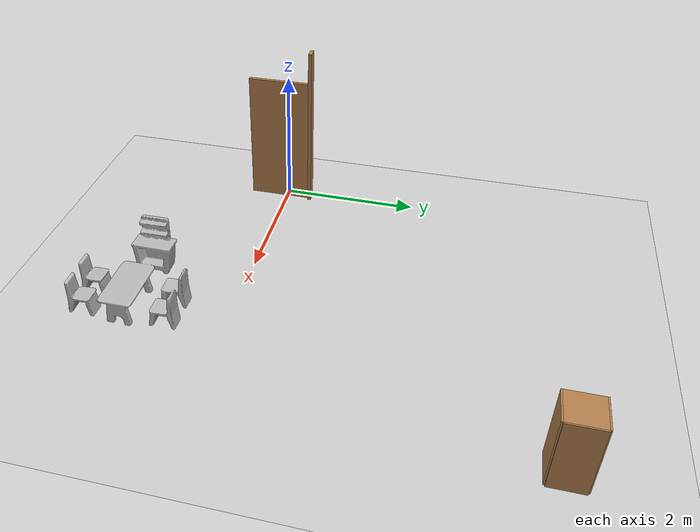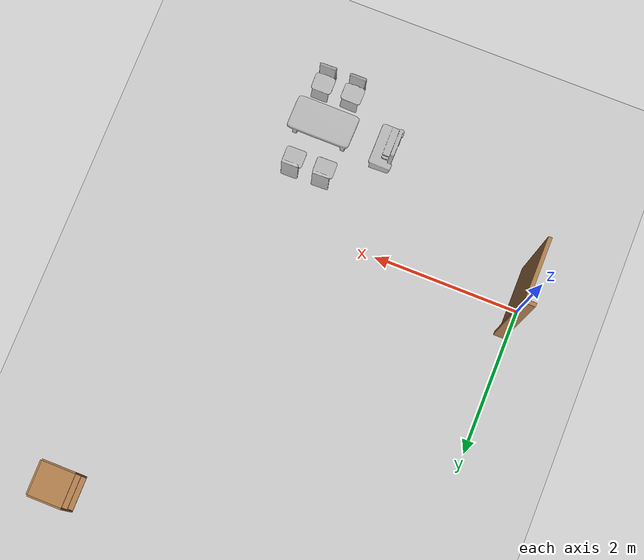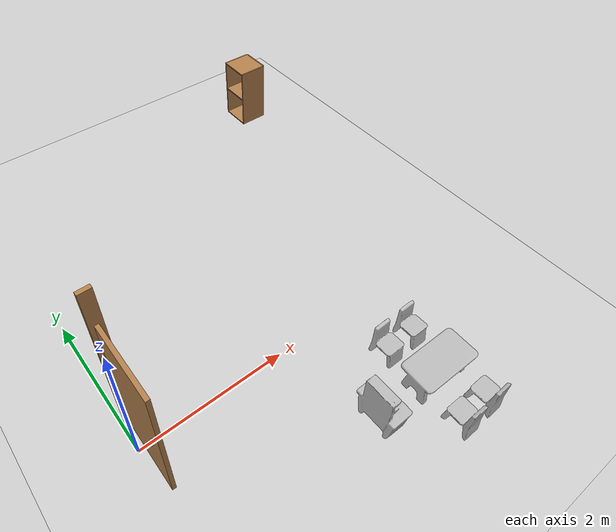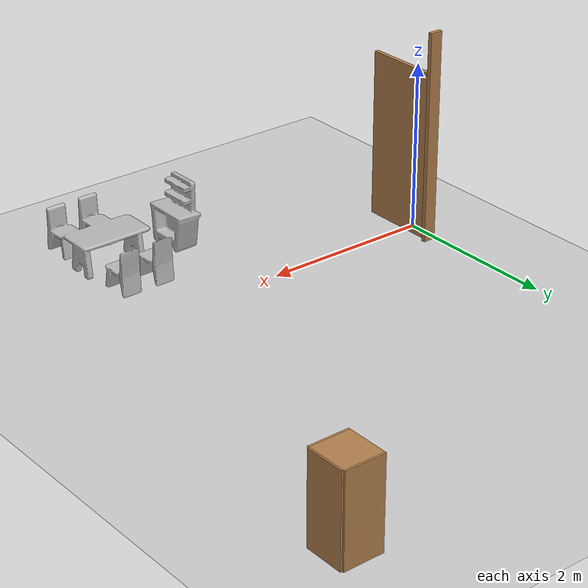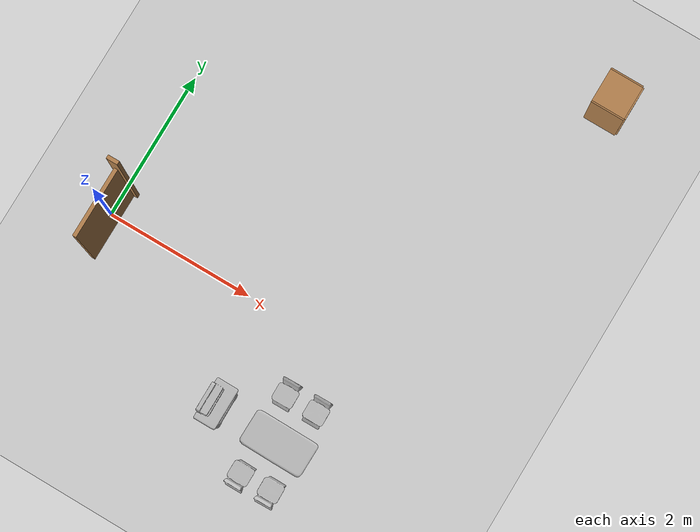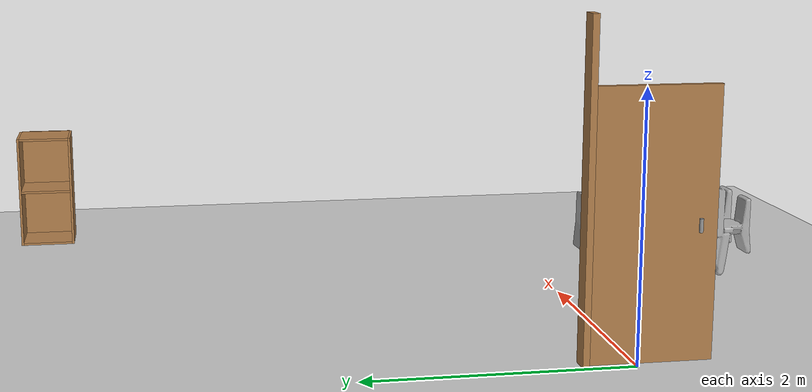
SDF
<sdf version="1.7">
 <world name="default">
  <model name="ground_plane">
   <static>1</static>
   <link name="link">
    <collision name="collision">
     <geometry><plane><normal>0 0 1</normal><size>100 100</size></plane></geometry>
     <surface><friction><ode><mu>100</mu><mu2>50</mu2></ode></friction></surface>
    </collision>
    <visual name="visual">
     <cast_shadows>0</cast_shadows>
     <geometry><plane><normal>0 0 1</normal><size>100 100</size></plane></geometry>
     <material>
      <script><uri>file://media/materials/scripts/gazebo.material</uri><name>Gazebo/Grey</name></script>
     </material>
    </visual>
   </link>
  </model>
  <light name="sun" type="directional">
   <pose>0 0 10 0 -0 0</pose>
   <diffuse>0.8 0.8 0.8 1</diffuse>
   <specular>0.2 0.2 0.2 1</specular>
   <attenuation>
    <range>1000</range>
    <constant>0.9</constant>
    <linear>0.01</linear>
    <quadratic>0.001</quadratic>
   </attenuation>
   <direction>-0.5 0.1 -0.9</direction>
   <spot><inner_angle>0</inner_angle><outer_angle>0</outer_angle><falloff>0</falloff></spot>
  </light>
  <scene><shadows>0</shadows><ambient>0.4 0.4 0.4 1</ambient><background>0.7 0.7 0.7 1</background></scene>
  <physics type="ode">
   <real_time_update_rate>1000</real_time_update_rate>
   <max_step_size>0.001</max_step_size>
   <real_time_factor>1</real_time_factor>
   <ode>
    <solver>
     <type>quick</type>
     <iters>150</iters>
     <precon_iters>0</precon_iters>
     <sor>1.4</sor>
     <use_dynamic_moi_rescaling>1</use_dynamic_moi_rescaling>
    </solver>
    <constraints>
     <cfm>1e-05</cfm>
     <erp>0.2</erp>
     <contact_max_correcting_vel>2000</contact_max_correcting_vel>
     <contact_surface_layer>0.01</contact_surface_layer>
    </constraints>
   </ode>
  </physics>
  <model name="door_wall_10">
   <pose>0.102477 0.367487 1.6e-05 0.000242 8e-06 -1.5708</pose>
   <static>1</static>
   <link name="door_frame">
    <inertial>
     <mass>1000</mass>
     <inertia><ixx>1</ixx><ixy>0</ixy><ixz>0</ixz><iyy>1</iyy><iyz>0</iyz><izz>1</izz></inertia>
    </inertial>
    <visual name="frame_visual">
     <pose>0 0 1.25 0 -0 0</pose>
     <geometry><box><size>0.05 0.15 2.5</size></box></geometry>
     <material>
      <script><uri>file://media/materials/scripts/gazebo.material</uri><name>Gazebo/Wood</name></script>
     </material>
    </visual>
    <collision name="frame_collision">
     <pose>0 0 1.25 0 -0 0</pose>
     <geometry><box><size>0.05 0.15 2.5</size></box></geometry>
    </collision>
   </link>
   <link name="door_panel">
    <inertial>
     <mass>10</mass>
     <pose>0.475 0 1 0 -0 0</pose>
     <inertia><ixx>3.36</ixx><ixy>0</ixy><ixz>0</ixz><iyy>0.76</iyy><iyz>0</iyz><izz>3.4</izz></inertia>
    </inertial>
    <visual name="panel_visual">
     <pose>0.475 0 1 0 -0 0</pose>
     <geometry><box><size>0.95 0.05 2</size></box></geometry>
     <material>
      <script><uri>file://media/materials/scripts/gazebo.material</uri><name>Gazebo/Wood</name></script>
      <ambient>0.55 0.35 0.15 1</ambient>
      <diffuse>0.55 0.35 0.15 1</diffuse>
     </material>
    </visual>
    <collision name="panel_collision">
     <pose>0.475 0 1 0 -0 0</pose>
     <geometry><box><size>0.95 0.05 2</size></box></geometry>
    </collision>
    <visual name="handle_visual">
     <pose>0.82 -0.05 1 0 -0 0</pose>
     <geometry><cylinder><radius>0.015</radius><length>0.1</length></cylinder></geometry>
     <material>
      <script><uri>file://media/materials/scripts/gazebo.material</uri><name>Gazebo/Grey</name></script>
     </material>
    </visual>
   </link>
   <joint name="frame_to_world" type="fixed"><parent>world</parent><child>door_frame</child></joint>
   <joint name="door_hinge" type="revolute">
    <parent>door_frame</parent>
    <child>door_panel</child>
    <axis>
     <xyz>0 0 1</xyz>
     <limit><lower>0</lower><upper>1.5708</upper><effort>100</effort><velocity>1</velocity></limit>
     <dynamics>
      <damping>5</damping>
      <friction>1</friction>
      <spring_reference>0</spring_reference>
      <spring_stiffness>0</spring_stiffness>
     </dynamics>
    </axis>
   </joint>
  </model>
  <plugin name="gazebo_ros_state" filename="libgazebo_ros_state.so"><update_rate>10.0</update_rate></plugin>
  <gravity>0 0 -9.8</gravity>
  <magnetic_field>6e-06 2.3e-05 -4.2e-05</magnetic_field>
  <atmosphere type="adiabatic"/>
  <audio><device>default</device></audio>
  <spherical_coordinates>
   <surface_model>EARTH_WGS84</surface_model>
   <latitude_deg>0</latitude_deg>
   <longitude_deg>0</longitude_deg>
   <elevation>0</elevation>
   <heading_deg>0</heading_deg>
  </spherical_coordinates>
  <model name="cabinet">
   <static>1</static>
   <link name="cabinet_bottom_plate">
    <inertial>
     <pose>0 0 -1 0 -0 0</pose>
     <inertia><ixx>2.05</ixx><ixy>0</ixy><ixz>0</ixz><iyy>2.05</iyy><iyz>0</iyz><izz>2.05</izz></inertia>
     <mass>25</mass>
    </inertial>
    <collision name="cabinet_bottom_plate_geom">
     <pose>0 0 0.01 0 -0 0</pose>
     <geometry><box><size>0.45 0.45 0.02</size></box></geometry>
    </collision>
    <visual name="cabinet_bottom_plate_geom_visual">
     <pose>0 0 0.01 0 -0 0</pose>
     <geometry><box><size>0.45 0.45 0.02</size></box></geometry>
     <material>
      <script><uri>file://media/materials/scripts/gazebo.material</uri><name>Gazebo/Wood</name></script>
     </material>
    </visual>
    <collision name="cabinet_bottom_plate_geom_cabinet_back_plate">
     <pose>0.235 0 0.51 0 -0 0</pose>
     <geometry><box><size>0.02 0.45 1.02</size></box></geometry>
    </collision>
    <visual name="cabinet_bottom_plate_geom_cabinet_back_plate_visual">
     <pose>0.235 0 0.51 0 -0 0</pose>
     <geometry><box><size>0.02 0.45 1.02</size></box></geometry>
     <material>
      <script><uri>file://media/materials/scripts/gazebo.material</uri><name>Gazebo/Wood</name></script>
     </material>
    </visual>
    <collision name="cabinet_bottom_plate_geom_cabinet_left_plate">
     <pose>0 0.235 0.51 0 -0 0</pose>
     <geometry><box><size>0.45 0.02 1.02</size></box></geometry>
    </collision>
    <visual name="cabinet_bottom_plate_geom_cabinet_left_plate_visual">
     <pose>0 0.235 0.51 0 -0 0</pose>
     <geometry><box><size>0.45 0.02 1.02</size></box></geometry>
     <material>
      <script><uri>file://media/materials/scripts/gazebo.material</uri><name>Gazebo/Wood</name></script>
     </material>
    </visual>
    <collision name="cabinet_bottom_plate_geom_cabinet_middle_plate">
     <pose>0 0 0.51 0 -0 0</pose>
     <geometry><box><size>0.45 0.45 0.02</size></box></geometry>
    </collision>
    <visual name="cabinet_bottom_plate_geom_cabinet_middle_plate_visual">
     <pose>0 0 0.51 0 -0 0</pose>
     <geometry><box><size>0.45 0.45 0.02</size></box></geometry>
     <material>
      <script><uri>file://media/materials/scripts/gazebo.material</uri><name>Gazebo/Wood</name></script>
     </material>
    </visual>
    <collision name="cabinet_bottom_plate_geom_cabinet_right_plate">
     <pose>0 -0.235 0.51 0 -0 0</pose>
     <geometry><box><size>0.45 0.02 1.02</size></box></geometry>
    </collision>
    <visual name="cabinet_bottom_plate_geom_cabinet_right_plate_visual">
     <pose>0 -0.235 0.51 0 -0 0</pose>
     <geometry><box><size>0.45 0.02 1.02</size></box></geometry>
     <material>
      <script><uri>file://media/materials/scripts/gazebo.material</uri><name>Gazebo/Wood</name></script>
     </material>
    </visual>
    <collision name="cabinet_bottom_plate_geom_cabinet_top_plate">
     <pose>0 0 1.01 0 -0 0</pose>
     <geometry><box><size>0.45 0.45 0.02</size></box></geometry>
    </collision>
    <visual name="cabinet_bottom_plate_geom_cabinet_top_plate_visual">
     <pose>0 0 1.01 0 -0 0</pose>
     <geometry><box><size>0.45 0.45 0.02</size></box></geometry>
     <material>
      <script><uri>file://media/materials/scripts/gazebo.material</uri><name>Gazebo/Wood</name></script>
     </material>
    </visual>
   </link>
   <pose>4.639 4.31958 0 0 -0 0</pose>
  </model>
  <model name="dinning_room_furniture_set_1">
   <static>1</static>
   <link name="link_0">
    <visual name="visual">
     <geometry>
      <mesh>
       <uri>model://DINNING_ROOM_FURNITURE_SET_1/meshes/model.obj</uri>
       <scale>7.92567 7.92567 7.92567</scale>
      </mesh>
     </geometry>
    </visual>
    <collision name="collision_0">
     <geometry>
      <mesh>
       <uri>model://DINNING_ROOM_FURNITURE_SET_1/meshes/model.obj</uri>
       <scale>7.92567 7.92567 7.92567</scale>
      </mesh>
     </geometry>
    </collision>
   </link>
   <pose>2.96979 -1.35622 0 0 -0 1.57888</pose>
  </model>
 </world>
</sdf>
